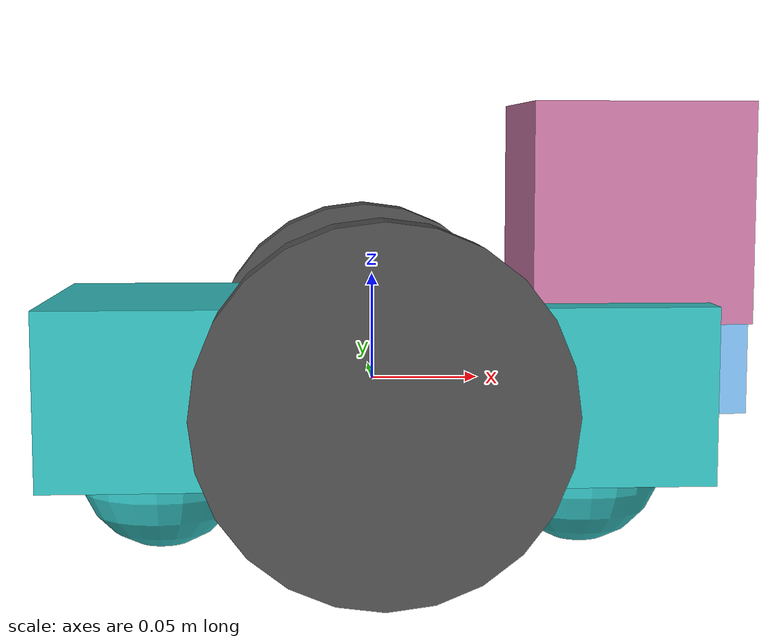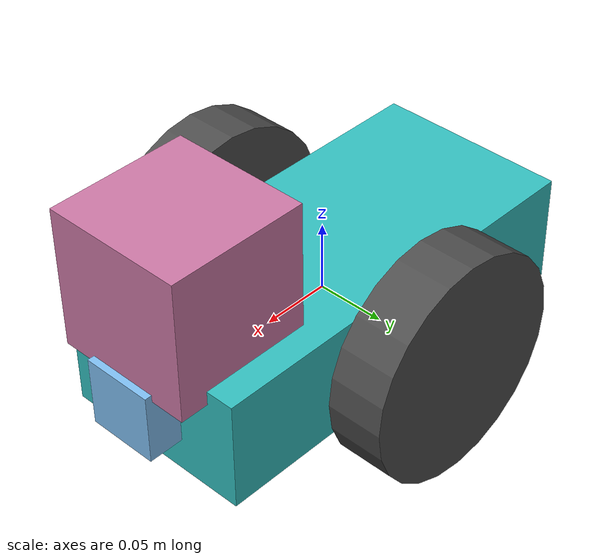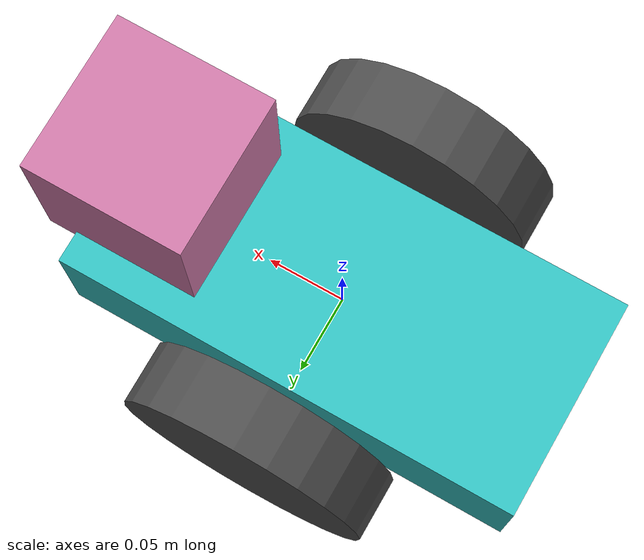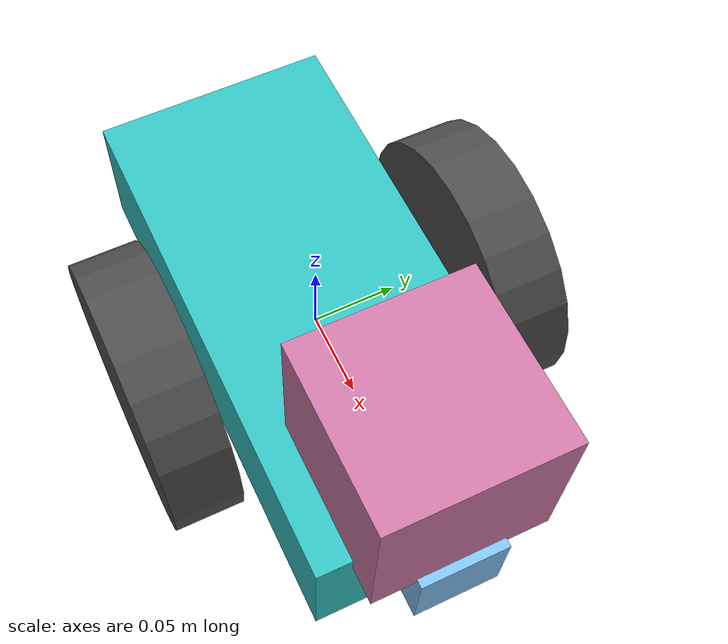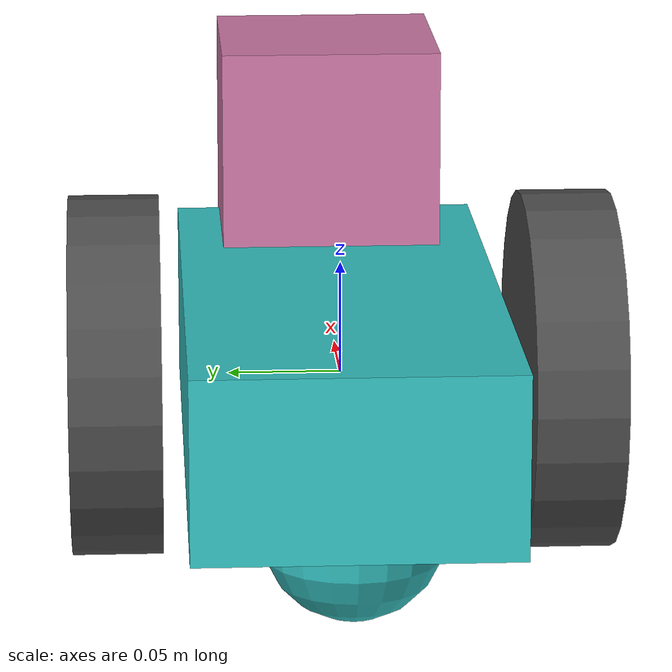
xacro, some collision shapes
<?xml version='1.0'?>

<robot name="my_robot" xmlns:xacro="http://www.ros.org/wiki/xacro">

  <xacro:include filename="$(find my_robot)/urdf/my_robot.gazebo" />

  <link name="robot_footprint"></link>

  <joint name="robot_footprint_joint" type="fixed">
    <origin xyz="0 0 0" rpy="0 0 0" />
    <parent link="robot_footprint"/>
    <child link="chassis" />
  </joint>

  <link name='chassis'>
    <pose>0 0 0.08 0 0 0</pose>

    <inertial>
      <mass value="15.0"/>
      <origin xyz="0.0 0 0" rpy=" 0 0 0"/>
      <inertia
          ixx="0.1" ixy="0" ixz="0"
          iyy="0.1" iyz="0"
          izz="0.1"
      />
    </inertial>

    <collision name='collision'>
      <origin xyz="0 0 0" rpy=" 0 0 0"/>
      <geometry>
        <box size=".3 .14 .08"/>
      </geometry>
    </collision>

    <visual name='chassis_visual'>
      <origin xyz="0 0 0" rpy=" 0 0 0"/>
      <geometry>
        <box size=".3 .14 .08"/>
      </geometry>
    </visual>

    <collision name='back_caster_collision'>
      <origin xyz="-0.1 0 -0.04" rpy=" 0 0 0"/>
      <geometry>
        <sphere radius="0.0399"/>
      </geometry>
    </collision>

    <visual name='back_caster_visual'>
      <origin xyz="-0.1 0 -0.04" rpy=" 0 0 0"/>
      <geometry>
        <sphere radius="0.04"/>
      </geometry>
    </visual>

    <collision name='front_caster_collision'>
      <origin xyz="0.1 0 -0.04" rpy=" 0 0 0"/>
      <geometry>
        <sphere radius="0.0399"/>
      </geometry>
    </collision>

    <visual name='front_caster_visual'>
      <origin xyz="0.1 0 -0.04" rpy=" 0 0 0"/>
      <geometry>
        <sphere radius="0.04"/>
      </geometry>
    </visual>

  </link>

  <gazebo reference="chassis">
    <material>Gazebo/Turquoise</material>
  </gazebo>

  <joint type="continuous" name="left_wheel_hinge">
    <origin xyz="0 0.1 0" rpy="0 0 0"/>
    <child link="left_wheel"/>
    <parent link="chassis"/>
    <axis xyz="0 1 0" rpy="0 0 0"/>
    <limit effort="10000" velocity="1000"/>
    <dynamics damping="1.0" friction="1.0"/>
  </joint>

  <link name='left_wheel'>
    <inertial>
      <mass value="5"/>
      <origin xyz="0.0 0 0" rpy=" 0 1.5707 1.5707"/>
      <inertia
          ixx="0.1" ixy="0" ixz="0"
          iyy="0.1" iyz="0"
          izz="0.1"
      />
    </inertial>

    <collision name='left_wheel_collision'>
      <origin xyz="0.0 0 0" rpy=" 0 1.5707 1.5707"/>
      <geometry>
	<cylinder radius="0.08" length="0.04"/>
      </geometry>
    </collision>

    <visual name='left_wheel_visual'>
      <origin xyz="0.0 0 0" rpy=" 0 1.5707 1.5707"/>
      <geometry>
	<cylinder radius="0.08" length="0.04"/>
      </geometry>
    </visual>
  </link>

  <gazebo reference="left_wheel">
    <material>Gazebo/DarkGrey</material>
  </gazebo>

  <joint type="continuous" name="right_wheel_hinge">
    <origin xyz="0 -0.1 0" rpy="0 0 0"/>
    <child link="right_wheel"/>
    <parent link="chassis"/>
    <axis xyz="0 1 0" rpy="0 0 0"/>
    <limit effort="10000" velocity="1000"/>
    <dynamics damping="1.0" friction="1.0"/>
  </joint>

  <link name='right_wheel'>
    <inertial>
      <mass value="5"/>
      <origin xyz="0.0 0 0" rpy=" 0 1.5707 1.5707"/>
      <inertia
          ixx="0.1" ixy="0" ixz="0"
          iyy="0.1" iyz="0"
          izz="0.1"
      />
    </inertial>

    <collision name='right_wheel_collision'>
      <origin xyz="0.0 0 0" rpy=" 0 1.5707 1.5707"/>
      <geometry>
	<cylinder radius="0.08" length="0.04"/>
      </geometry>
    </collision>

    <visual name='right_wheel_visual'>
      <origin xyz="0.0 0 0" rpy=" 0 1.5707 1.5707"/>
      <geometry>
	<cylinder radius="0.08" length="0.04"/>
      </geometry>
    </visual>
  </link>

  <gazebo reference="right_wheel">
    <material>Gazebo/DarkGrey</material>
  </gazebo>

  <joint type="fixed" name="camera_joint">
    <origin xyz="0.15 0 0.01" rpy="0 0 0"/>
    <child link="camera"/>
    <parent link="chassis"/>
    <axis xyz="0 1 0" rpy="0 0 0"/>
  </joint>

  <link name='camera'>
    <inertial>
      <mass value="0.1"/>
      <origin xyz="0 0 0" rpy="0 0 0"/>
      <inertia
          ixx="1e-6" ixy="0" ixz="0"
          iyy="1e-6" iyz="0"
          izz="1e-6"
      />
    </inertial>

    <collision name='camera_collision'>
      <origin xyz="0 0 0" rpy="0 0 0"/>
      <geometry>
	<box size="0.05 0.05 0.05"/>
      </geometry>
    </collision>

    <visual name='camera_visual'>
      <origin xyz="0 0 0" rpy="0 0 0"/>
      <geometry>
	<box size="0.05 0.05 0.05"/>
      </geometry>
    </visual>
  </link>

  <gazebo reference="camera">
    <material>Gazebo/SkyBlue</material>
  </gazebo>

  <joint name="camera_optical_joint" type="fixed">
    <origin xyz="0 0 0" rpy="-1.5707 0 -1.5707"/>
    <parent link="camera"/>
    <child link="camera_link_optical"/>
  </joint>

  <link name="camera_link_optical">
  </link>

  <joint type="fixed" name="hokuyo_joint">
    <origin xyz="0.12 0 0.08" rpy="0 0 0"/>
    <child link="hokuyo"/>
    <parent link="chassis"/>
    <axis xyz="0 1 0" rpy="0 0 0"/>
  </joint>

  <link name='hokuyo'>
    <inertial>
      <mass value="1e-5"/>
      <origin xyz="0 0 0" rpy="0 0 0"/>
      <inertia
          ixx="1e-6" ixy="0" ixz="0"
          iyy="1e-6" iyz="0"
          izz="1e-6"
      />
    </inertial>

    <collision name='hokuyo_collision'>
      <origin xyz="0 0 0" rpy="0 0 0"/>
      <geometry>
	<box size="0.1 0.1 0.1"/>
      </geometry>
    </collision>

    <visual name='hokuyo_visual'>
      <origin xyz="0 0 0" rpy="0 0 0"/>
      <geometry>
	<mesh filename='package://my_robot/meshes/hokuyo.dae'/>
      </geometry>
    </visual>
  </link>

</robot>
